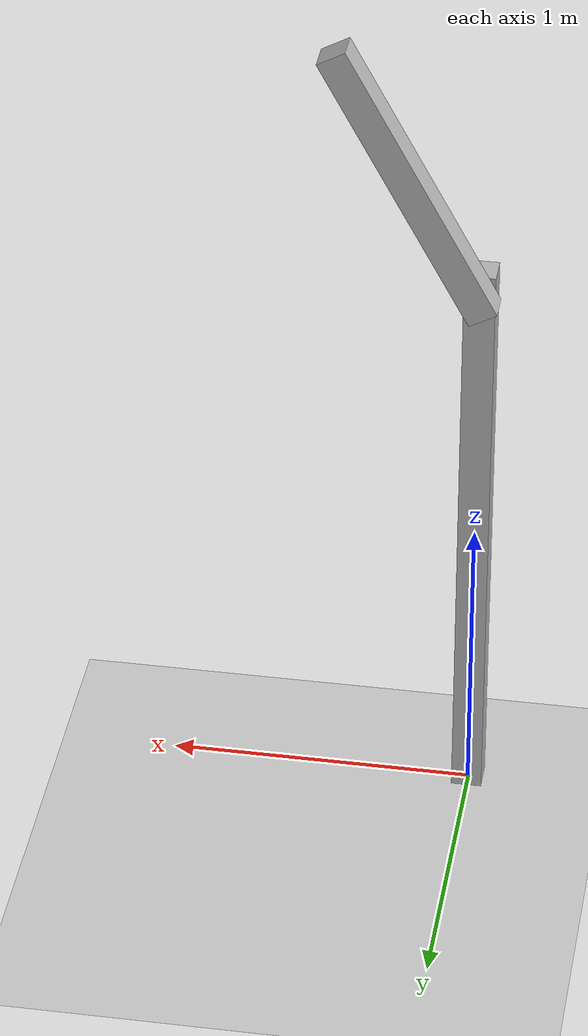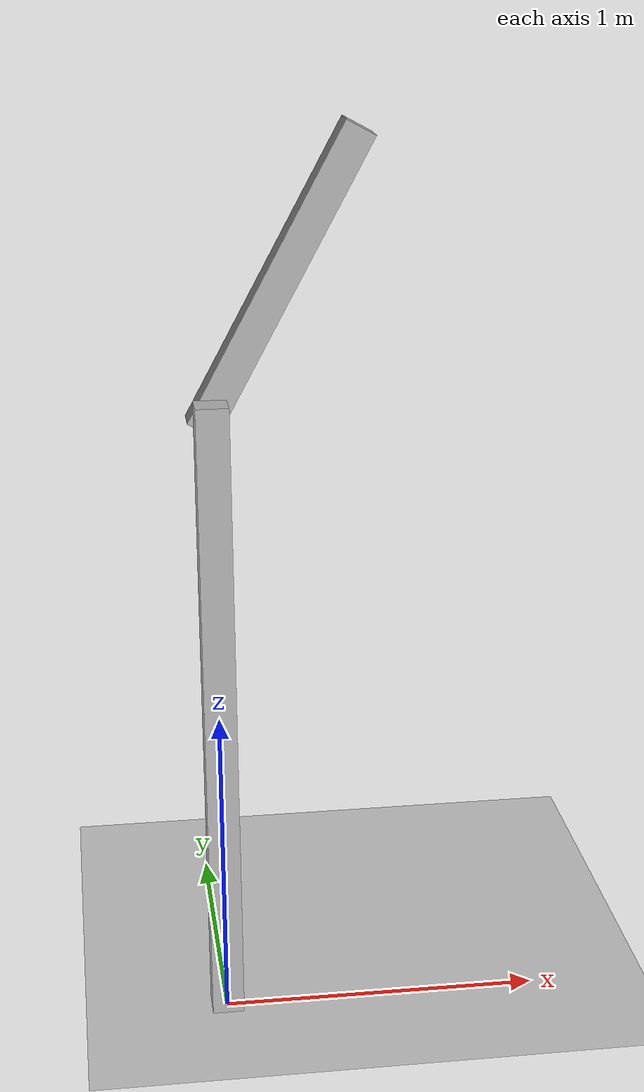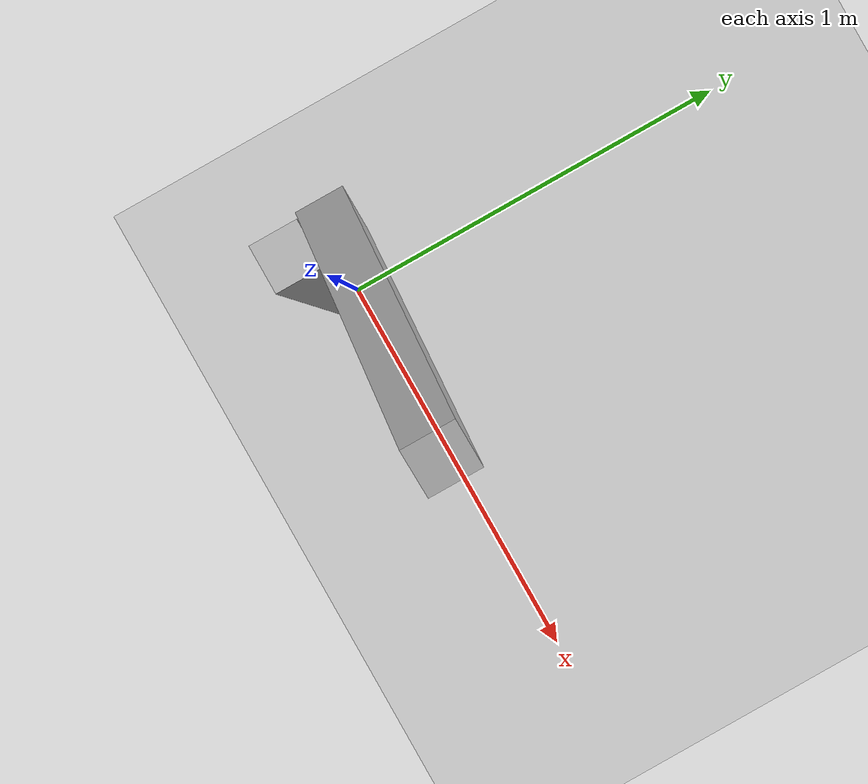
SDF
<?xml version="1.0"?>
<sdf version="1.4">
  <world name="default">
    <include>
      <uri>model://ground_plane</uri>
    </include>

    <include>
      <uri>model://sun</uri>
    </include>

    <include>
      <uri>model://simple_bot</uri>
    </include>
  </world>
</sdf>

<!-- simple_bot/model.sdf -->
<sdf version='1.7'>
  <model name='rrbot'>
    <joint name='fixed' type='fixed'>
      <pose relative_to='__model__'>0 0 0 0 -0 0</pose>
      <parent>world</parent>
      <child>BaseLink</child>
    </joint>
    <link name='BaseLink'>
      <pose relative_to='fixed'>0 0 0 0 -0 0</pose>
      <inertial>
        <pose>0 0 1 0 -0 0</pose>
        <mass>1</mass>
        <inertia>
          <ixx>0.334167</ixx>
          <ixy>0</ixy>
          <ixz>0</ixz>
          <iyy>0.334167</iyy>
          <iyz>0</iyz>
          <izz>0.00166667</izz>
        </inertia>
      </inertial>
      <collision name='BaseLink_collision'>
        <pose>0 0 1 0 -0 0</pose>
        <geometry>
          <box>
            <size>0.1 0.1 2</size>
          </box>
        </geometry>
      </collision>
      <visual name='BaseLink_visual'>
        <pose>0 0 1 0 -0 0</pose>
        <geometry>
          <box>
            <size>0.1 0.1 2</size>
          </box>
        </geometry>
      </visual>
      <gravity>1</gravity>
      <velocity_decay/>
      <self_collide>1</self_collide>
    </link>
    <joint name='ArmJoint' type='revolute'>
      <pose relative_to='BaseLink'>0 0.1 1.95 0 0.5 0</pose>
      <parent>BaseLink</parent>
      <child>ArmLink</child>
      <axis>
        <xyz>0 1 0</xyz>
        <limit>
          <lower>-3.14</lower>
          <upper>3.14</upper>
          <effort>320</effort>
          <velocity>4.5</velocity>
        </limit>
      </axis>
    </joint>
    <link name='ArmLink'>
      <pose relative_to='ArmJoint'>0 0 0.45 0 -0 0</pose>
      <inertial>
        <pose>0 0 1.95 0 -0 0</pose>
        <mass>1</mass>
        <inertia>
          <ixx>0.334167</ixx>
          <ixy>0</ixy>
          <ixz>0</ixz>
          <iyy>0.334167</iyy>
          <iyz>0</iyz>
          <izz>0.00166667</izz>
        </inertia>
      </inertial>
      <collision name='ArmLink_collision'>
        <pose>0 0 0 0 -0 0</pose>
        <geometry>
          <box>
            <size>0.1 0.1 1</size>
          </box>
        </geometry>
      </collision>
      <visual name='ArmLink_visual'>
        <pose>0 0 0 0 -0 0</pose>
        <geometry>
          <box>
            <size>0.1 0.1 1</size>
          </box>
        </geometry>
      </visual>
      <gravity>1</gravity>
      <velocity_decay/>
      <self_collide>1</self_collide>
    </link>
    <plugin name="model_push" filename="libtest_bench.so"/>
  </model>
</sdf>
